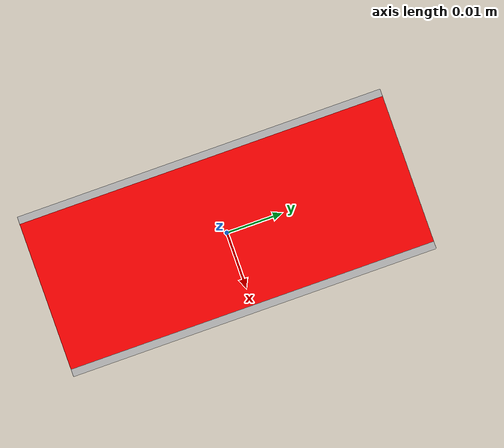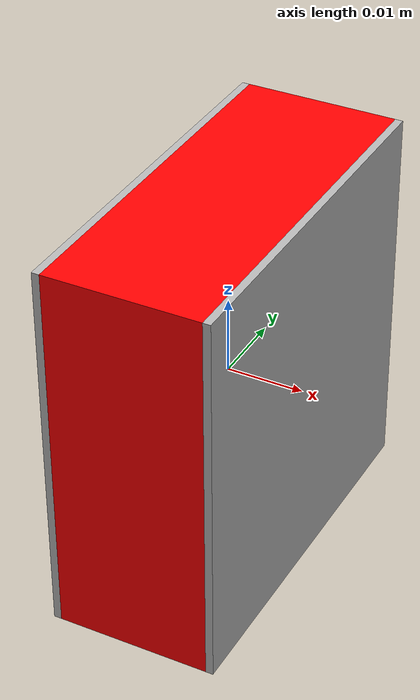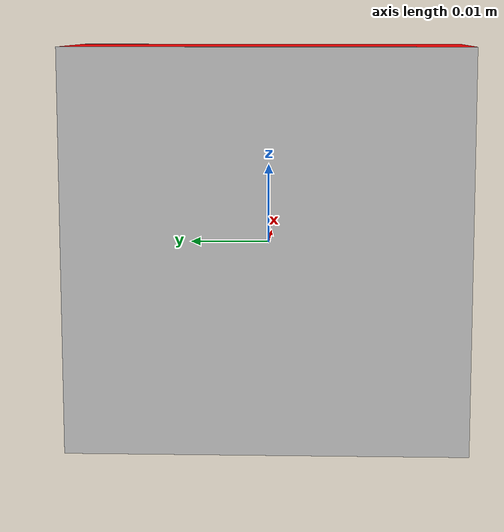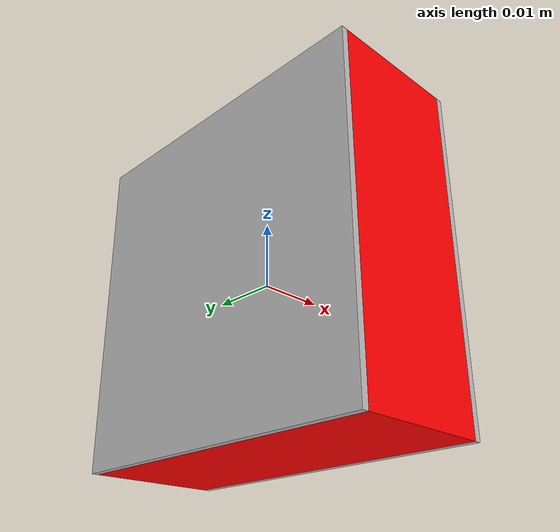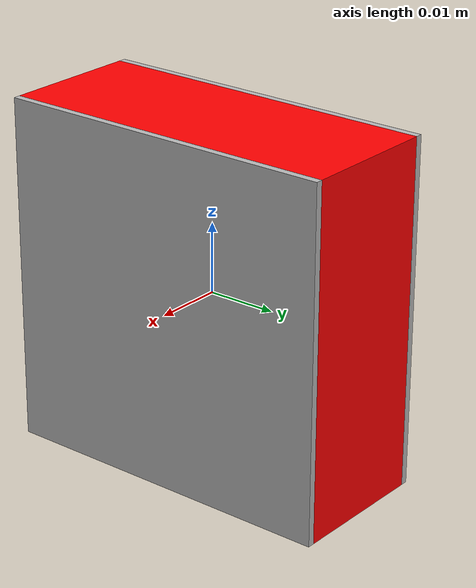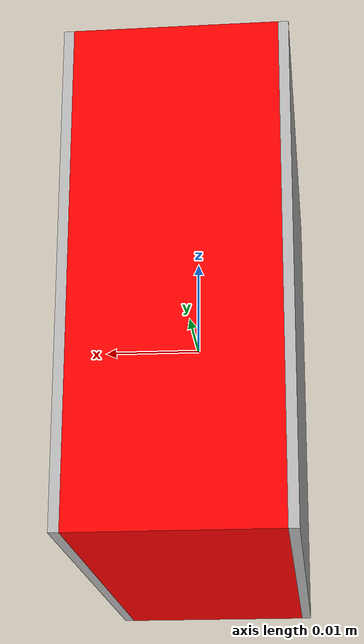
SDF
<?xml version="1.0" ?>
<sdf version="1.6">
  <model name="block_marker">
    <static>false</static>

    <link name="block_link">
      <pose>0 0 0 0 0 0</pose>

      <collision name="block_collision">
        <geometry>
          <box>
            <size>0.02 0.05 0.05</size>
          </box>
        </geometry>
      </collision>

      <visual name="block_visual">
        <geometry>
          <box>
            <size>0.02 0.05 0.05</size>
          </box>
        </geometry>

        <material>
          <ambient>1 0 0 1</ambient>
          <diffuse>1 0 0 1</diffuse>
        </material>
      </visual>

      <!--PLACA DA TAG NA FACE 5×5 -->
      <visual name="tag_plate">
        <!-- Posição: metade do bloco (0.01) + metade da placa (0.0005) -->
        <pose>0.0105 0 0 0 0 0</pose>

        <geometry>
          <box>
            <!-- placa fina colada -->
            <size>0.001 0.05 0.05</size>
          </box>
        </geometry>

        <material>
          <lighting>false</lighting>
            <script>
              <uri>model://block_marker/materials/scripts</uri>
              <uri>model://block_marker/materials/textures</uri>
              <name>BlockMarker/Diffuse</name>
          </script>
        </material>
      </visual>

      <visual name="tag_plate_2">
        <!-- tag em outra face -->
        <pose>-0.0105 0 0 0 0 0</pose>

        <geometry>
          <box>
            <!-- placa fina colada -->
            <size>0.001 0.05 0.05</size>
          </box>
        </geometry>

        <material>
          <lighting>false</lighting>
            <script>
              <uri>model://block_marker/materials/scripts</uri>
              <uri>model://block_marker/materials/textures</uri>
              <name>BlockMarker/Diffuse</name>
          </script>
        </material>
      </visual>

    </link>

  </model>
</sdf>
